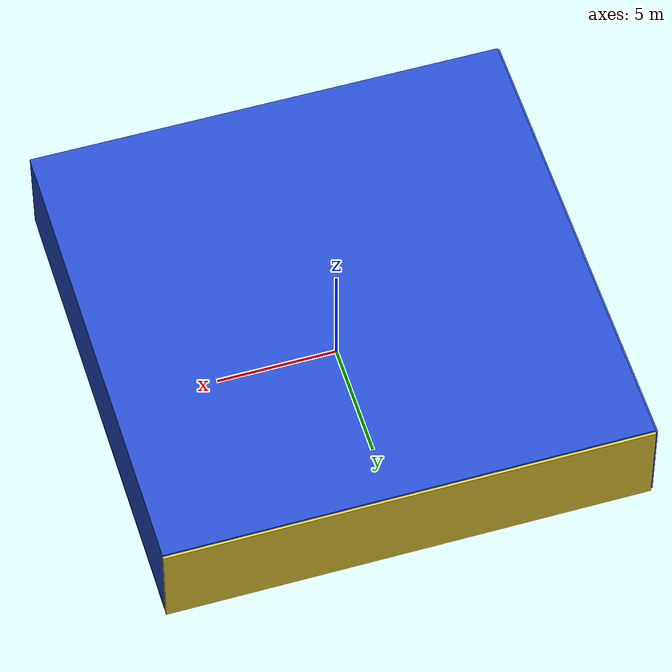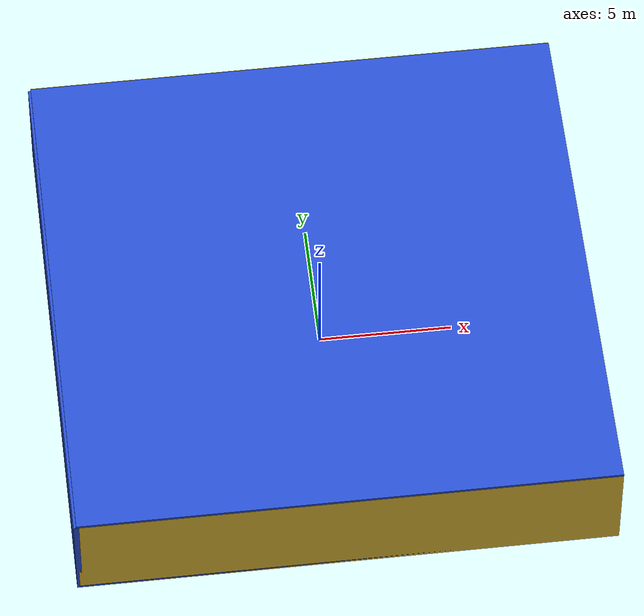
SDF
<sdf version="1.4">
 <world name="default">
  <physics type="ode">
   <max_step_size>0.001</max_step_size>
   <real_time_factor>1</real_time_factor>
   <real_time_update_rate>1000</real_time_update_rate>
   <gravity>0 0 -9.8</gravity>
  </physics>
  <scene><ambient>0.4 0.4 0.4 1</ambient><background>0.7 0.7 0.7 1</background><shadows>1</shadows></scene>
  <model name="Surrounding">
   <static>1</static>
   <link name="Ceiling">
    <collision name="Ceiling_Collision"><geometry><box><size>20 20 0.1</size></box></geometry></collision>
    <visual name="Ceiling_Visual">
     <geometry><box><size>20 20 0.1</size></box></geometry>
     <material>
      <script><uri>file://media/materials/scripts/gazebo.material</uri><name>Gazebo/Blue</name></script>
     </material>
    </visual>
    <pose>0 0 4.05 0 0 0</pose>
   </link>
   <link name="Wall_South">
    <collision name="Wall_South_Collision">
     <geometry><box><size>20 0 4</size></box></geometry>
     <pose>0 0 2 0 -0 0</pose>
    </collision>
    <visual name="Wall_South_Visual">
     <pose>0 0 2 0 -0 0</pose>
     <geometry><box><size>20 0 4</size></box></geometry>
     <material>
      <script><uri>file://media/materials/scripts/gazebo.material</uri><name>Gazebo/Gold</name></script>
     </material>
    </visual>
    <velocity_decay><linear>0</linear><angular>0</angular></velocity_decay>
    <pose>0 -10 0 0 -0 0</pose>
   </link>
   <link name="Wall_East">
    <collision name="Wall_21_Collision">
     <geometry><box><size>20 0 4</size></box></geometry>
     <pose>0 0 2 0 -0 0</pose>
    </collision>
    <visual name="Wall_21_Visual">
     <pose>0 0 2 0 -0 0</pose>
     <geometry><box><size>20 0 4</size></box></geometry>
     <material>
      <script><uri>file://media/materials/scripts/gazebo.material</uri><name>Gazebo/BlueGlow</name></script>
     </material>
    </visual>
    <velocity_decay><linear>0</linear><angular>0</angular></velocity_decay>
    <pose>10 0 0 0 -0 1.5708</pose>
   </link>
   <link name="Wall_North">
    <collision name="Wall_22_Collision">
     <geometry><box><size>20 0.2 4</size></box></geometry>
     <pose>0 0 2 0 -0 0</pose>
    </collision>
    <visual name="Wall_22_Visual">
     <pose>0 0 2 0 -0 0</pose>
     <geometry><box><size>20 0.2 4</size></box></geometry>
     <material>
      <script><uri>file://media/materials/scripts/gazebo.material</uri><name>Gazebo/ZincYellow</name></script>
     </material>
    </visual>
    <velocity_decay><linear>0</linear><angular>0</angular></velocity_decay>
    <pose>0 10 0 0 -0 0</pose>
   </link>
   <link name="Wall_West">
    <collision name="Wall_23_Collision">
     <geometry><box><size>20 0.2 4</size></box></geometry>
     <pose>0 0 2 0 -0 0</pose>
    </collision>
    <visual name="Wall_23_Visual">
     <pose>0 0 2 0 -0 0</pose>
     <geometry><box><size>20 0.2 4</size></box></geometry>
     <material>
      <script><uri>file://media/materials/scripts/gazebo.material</uri><name>Gazebo/BlueGlow</name></script>
     </material>
    </visual>
    <velocity_decay><linear>0</linear><angular>0</angular></velocity_decay>
    <pose>-10 0 0 0 0 -1.5708</pose>
   </link>
   <link name="Ground_link">
    <collision name="collision">
     <pose>0 0 .05 0 -0 0</pose>
     <geometry><box><size>20 20 0.1</size></box></geometry>
    </collision>
    <visual name="visual">
     <pose>0 0 .05 0 -0 0</pose>
     <geometry><box><size>20 20 0.1</size></box></geometry>
     <material>
      <script><uri>file://media/materials/scripts/gazebo.material</uri><name>Gazebo/Blue</name></script>
     </material>
    </visual>
   </link>
   <static>1</static>
  </model>
  <spherical_coordinates>
   <surface_model>EARTH_WGS84</surface_model>
   <latitude_deg>0</latitude_deg>
   <longitude_deg>0</longitude_deg>
   <elevation>0</elevation>
   <heading_deg>0</heading_deg>
  </spherical_coordinates>
  <light name="lightball_0" type="diffuse">
   <diffuse>0.8 0.8 0.8 1</diffuse>
   <specular>0.2 0.2 0.2 1</specular>
   <attenuation>
    <range>100</range>
    <constant>0.7</constant>
    <linear>0.01</linear>
    <quadratic>0.001</quadratic>
   </attenuation>
   <direction>-0.5 0.1 -0.9</direction>
   <pose>-4.50938060313 -2.66443385948 2.46065921499 0 0 0</pose>
  </light>
  <light name="lightball_1" type="diffuse">
   <diffuse>0.8 0.8 0.8 1</diffuse>
   <specular>0.2 0.2 0.2 1</specular>
   <attenuation>
    <range>100</range>
    <constant>0.7</constant>
    <linear>0.01</linear>
    <quadratic>0.001</quadratic>
   </attenuation>
   <direction>-0.5 0.1 -0.9</direction>
   <pose>3.87677053267 3.65345903094 1.46523908454 0 0 0</pose>
  </light>
  <light name="lightball_2" type="diffuse">
   <diffuse>0.8 0.8 0.8 1</diffuse>
   <specular>0.2 0.2 0.2 1</specular>
   <attenuation>
    <range>100</range>
    <constant>0.7</constant>
    <linear>0.01</linear>
    <quadratic>0.001</quadratic>
   </attenuation>
   <direction>-0.5 0.1 -0.9</direction>
   <pose>3.82095743628 3.14370035571 3.18215205206 0 0 0</pose>
  </light>
  <light name="lightball_3" type="diffuse">
   <diffuse>0.8 0.8 0.8 1</diffuse>
   <specular>0.2 0.2 0.2 1</specular>
   <attenuation>
    <range>100</range>
    <constant>0.7</constant>
    <linear>0.01</linear>
    <quadratic>0.001</quadratic>
   </attenuation>
   <direction>-0.5 0.1 -0.9</direction>
   <pose>4.64756107031 -8.65308073848 2.47183353516 0 0 0</pose>
  </light>
  <light name="lightball_4" type="diffuse">
   <diffuse>0.8 0.8 0.8 1</diffuse>
   <specular>0.2 0.2 0.2 1</specular>
   <attenuation>
    <range>100</range>
    <constant>0.7</constant>
    <linear>0.01</linear>
    <quadratic>0.001</quadratic>
   </attenuation>
   <direction>-0.5 0.1 -0.9</direction>
   <pose>-3.67046906867 -7.69323905153 3.57165146503 0 0 0</pose>
  </light>
  <light name="lightball_5" type="diffuse">
   <diffuse>0.8 0.8 0.8 1</diffuse>
   <specular>0.2 0.2 0.2 1</specular>
   <attenuation>
    <range>100</range>
    <constant>0.7</constant>
    <linear>0.01</linear>
    <quadratic>0.001</quadratic>
   </attenuation>
   <direction>-0.5 0.1 -0.9</direction>
   <pose>-4.2331853151 -1.44675135374 2.82819611426 0 0 0</pose>
  </light>
  <light name="lightball_6" type="diffuse">
   <diffuse>0.8 0.8 0.8 1</diffuse>
   <specular>0.2 0.2 0.2 1</specular>
   <attenuation>
    <range>100</range>
    <constant>0.7</constant>
    <linear>0.01</linear>
    <quadratic>0.001</quadratic>
   </attenuation>
   <direction>-0.5 0.1 -0.9</direction>
   <pose>-5.01881936674 -8.16698368749 0.84626506311 0 0 0</pose>
  </light>
  <include><uri>model://table</uri><pose>-8.27968434888 0.996900837352 0 0 0 1.96075935393</pose></include>
  <include>
   <uri>model://construction_cone</uri>
   <pose>0.992380250676 1.90385185827 0 0 0 0.427760779031</pose>
  </include>
  <include><uri>model://cabinet</uri><pose>4.98733630497 -1.4923996205 0 0 0 3.03543527295</pose></include>
  <include><uri>model://table</uri><pose>7.01892449869 1.27358341606 0 0 0 1.26734900157</pose></include>
 </world>
</sdf>

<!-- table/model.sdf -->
<sdf version="1.5">
  <model name="table">
    <static>true</static>
    <link name="link">
      <collision name="surface">
        <pose>0 0 1.0 0 0 0</pose>
        <geometry>
          <box>
            <size>1.5 0.8 0.03</size>
          </box>
        </geometry>
        <surface>
          <friction>
            <ode>
              <mu>0.6</mu>
              <mu2>0.6</mu2>
            </ode>
          </friction>
        </surface>
      </collision>
      <visual name="visual1">
        <pose>0 0 1.0 0 0 0</pose>
        <geometry>
          <box>
            <size>1.5 0.8 0.03</size>
          </box>
        </geometry>
        <material>
          <script>
            <uri>model://media/materials/scripts/gazebo.material</uri>
            <name>Gazebo/Wood</name>
          </script>
        </material>
      </visual>
      <collision name="front_left_leg">
        <pose>0.68 0.38 0.5 0 0 0</pose>
        <geometry>
          <cylinder>
            <radius>0.02</radius>
            <length>1.0</length>
          </cylinder>
        </geometry>
      </collision>
      <visual name="front_left_leg">
        <pose>0.68 0.38 0.5 0 0 0</pose>
        <geometry>
          <cylinder>
            <radius>0.02</radius>
            <length>1.0</length>
          </cylinder>
        </geometry>
        <material>
          <script>
            <uri>model://media/materials/scripts/gazebo.material</uri>
            <name>Gazebo/Grey</name>
          </script>
        </material>
      </visual>
      <collision name="front_right_leg">
        <pose>0.68 -0.38 0.5 0 0 0</pose>
        <geometry>
          <cylinder>
            <radius>0.02</radius>
            <length>1.0</length>
          </cylinder>
        </geometry>
      </collision>
      <visual name="front_right_leg">
        <pose>0.68 -0.38 0.5 0 0 0</pose>
        <geometry>
          <cylinder>
            <radius>0.02</radius>
            <length>1.0</length>
          </cylinder>
        </geometry>
        <material>
          <script>
            <uri>model://media/materials/scripts/gazebo.material</uri>
            <name>Gazebo/Grey</name>
          </script>
        </material>
      </visual>
      <collision name="back_right_leg">
        <pose>-0.68 -0.38 0.5 0 0 0</pose>
        <geometry>
          <cylinder>
            <radius>0.02</radius>
            <length>1.0</length>
          </cylinder>
        </geometry>
      </collision>
      <visual name="back_right_leg">
        <pose>-0.68 -0.38 0.5 0 0 0</pose>
        <geometry>
          <cylinder>
            <radius>0.02</radius>
            <length>1.0</length>
          </cylinder>
        </geometry>
        <material>
          <script>
            <uri>model://media/materials/scripts/gazebo.material</uri>
            <name>Gazebo/Grey</name>
          </script>
        </material>
      </visual>
      <collision name="back_left_leg">
        <pose>-0.68 0.38 0.5 0 0 0</pose>
        <geometry>
          <cylinder>
            <radius>0.02</radius>
            <length>1.0</length>
          </cylinder>
        </geometry>
      </collision>
      <visual name="back_left_leg">
        <pose>-0.68 0.38 0.5 0 0 0</pose>
        <geometry>
          <cylinder>
            <radius>0.02</radius>
            <length>1.0</length>
          </cylinder>
        </geometry>
        <material>
          <script>
            <uri>model://media/materials/scripts/gazebo.material</uri>
            <name>Gazebo/Grey</name>
          </script>
        </material>
      </visual>
    </link>
  </model>
</sdf>

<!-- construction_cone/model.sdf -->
<sdf version="1.5">
  <model name="Construction Cone">
    <link name="link">
      <collision name="collision">
        <geometry>
          <mesh>
            <scale>10 10 10</scale>
            <uri>file://isr-testbed/construction_cone/meshes/construction_cone.dae</uri>
          </mesh>
        </geometry>
      </collision>
      <visual name="visual">
        <geometry>
          <mesh>
            <scale>10 10 10</scale>
            <uri>file://isr-testbed/construction_cone/meshes/construction_cone.dae</uri>
          </mesh>
        </geometry>
      </visual>
    </link>
  </model>
</sdf>

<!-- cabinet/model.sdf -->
<sdf version="1.5">
  <model name="cabinet">
    <static>true</static>
    <link name="cabinet_bottom_plate">
      <inertial>
        <pose>0 0 -1 0 0 0</pose>
        <inertia>
          <ixx>2.050000</ixx>
          <ixy>0</ixy>
          <ixz>0</ixz>
          <iyy>2.050000</iyy>
          <iyz>0</iyz>
          <izz>2.050000</izz>
        </inertia>
        <mass>25.000000</mass>
      </inertial>
      <collision name="cabinet_bottom_plate_geom">
        <pose>0 0 0.010000 0 0 0</pose>
        <geometry>
          <box>
            <size>0.450000 0.450000 0.020000</size>
          </box>
        </geometry>
      </collision>
      <visual name="cabinet_bottom_plate_geom_visual">
        <pose>0 0 0.010000 0 0 0</pose>
        <geometry>
          <box>
            <size>0.450000 0.450000 0.020000</size>
          </box>
        </geometry>
        <material>
          <script>
            <uri>model://media/materials/scripts/gazebo.material</uri>
            <name>Gazebo/Wood</name>
          </script>
        </material>
      </visual>
      <collision name="cabinet_bottom_plate_geom_cabinet_back_plate">
        <pose>0.235000 0 0.510000 0 0 0</pose>
        <geometry>
          <box>
            <size>0.020000 0.450000 1.020000</size>
          </box>
        </geometry>
      </collision>
      <visual name="cabinet_bottom_plate_geom_cabinet_back_plate_visual">
        <pose>0.235000 0 0.510000 0 0 0</pose>
        <geometry>
          <box>
            <size>0.020000 0.450000 1.020000</size>
          </box>
        </geometry>
        <material>
          <script>
            <uri>model://media/materials/scripts/gazebo.material</uri>
            <name>Gazebo/Wood</name>
          </script>
        </material>
      </visual>
      <collision name="cabinet_bottom_plate_geom_cabinet_left_plate">
        <pose>0 0.235000 0.510000 0 0 0</pose>
        <geometry>
          <box>
            <size>0.450000 0.020000 1.020000</size>
          </box>
        </geometry>
      </collision>
      <visual name="cabinet_bottom_plate_geom_cabinet_left_plate_visual">
        <pose>0 0.235000 0.510000 0 0 0</pose>
        <geometry>
          <box>
            <size>0.450000 0.020000 1.020000</size>
          </box>
        </geometry>
        <material>
          <script>
            <uri>model://media/materials/scripts/gazebo.material</uri>
            <name>Gazebo/Wood</name>
          </script>
        </material>
      </visual>
      <collision name="cabinet_bottom_plate_geom_cabinet_middle_plate">
        <pose>0 0 0.510000 0 0 0</pose>
        <geometry>
          <box>
            <size>0.450000 0.450000 0.020000</size>
          </box>
        </geometry>
      </collision>
      <visual name="cabinet_bottom_plate_geom_cabinet_middle_plate_visual">
        <pose>0 0 0.510000 0 0 0</pose>
        <geometry>
          <box>
            <size>0.450000 0.450000 0.020000</size>
          </box>
        </geometry>
        <material>
          <script>
            <uri>model://media/materials/scripts/gazebo.material</uri>
            <name>Gazebo/Wood</name>
          </script>
        </material>
      </visual>
      <collision name="cabinet_bottom_plate_geom_cabinet_right_plate">
        <pose>0 -0.235000 0.510000 0 0 0</pose>
        <geometry>
          <box>
            <size>0.450000 0.020000 1.020000</size>
          </box>
        </geometry>
      </collision>
      <visual name="cabinet_bottom_plate_geom_cabinet_right_plate_visual">
        <pose>0 -0.235000 0.510000 0 0 0</pose>
        <geometry>
          <box>
            <size>0.450000 0.020000 1.020000</size>
          </box>
        </geometry>
        <material>
          <script>
            <uri>model://media/materials/scripts/gazebo.material</uri>
            <name>Gazebo/Wood</name>
          </script>
        </material>
      </visual>
      <collision name="cabinet_bottom_plate_geom_cabinet_top_plate">
        <pose>0 0 1.010000 0 0 0</pose>
        <geometry>
          <box>
            <size>0.450000 0.450000 0.020000</size>
          </box>
        </geometry>
      </collision>
      <visual name="cabinet_bottom_plate_geom_cabinet_top_plate_visual">
        <pose>0 0 1.010000 0 0 0</pose>
        <geometry>
          <box>
            <size>0.450000 0.450000 0.020000</size>
          </box>
        </geometry>
        <material>
          <script>
            <uri>model://media/materials/scripts/gazebo.material</uri>
            <name>Gazebo/Wood</name>
          </script>
        </material>
      </visual>
    </link>
  </model>
</sdf>
